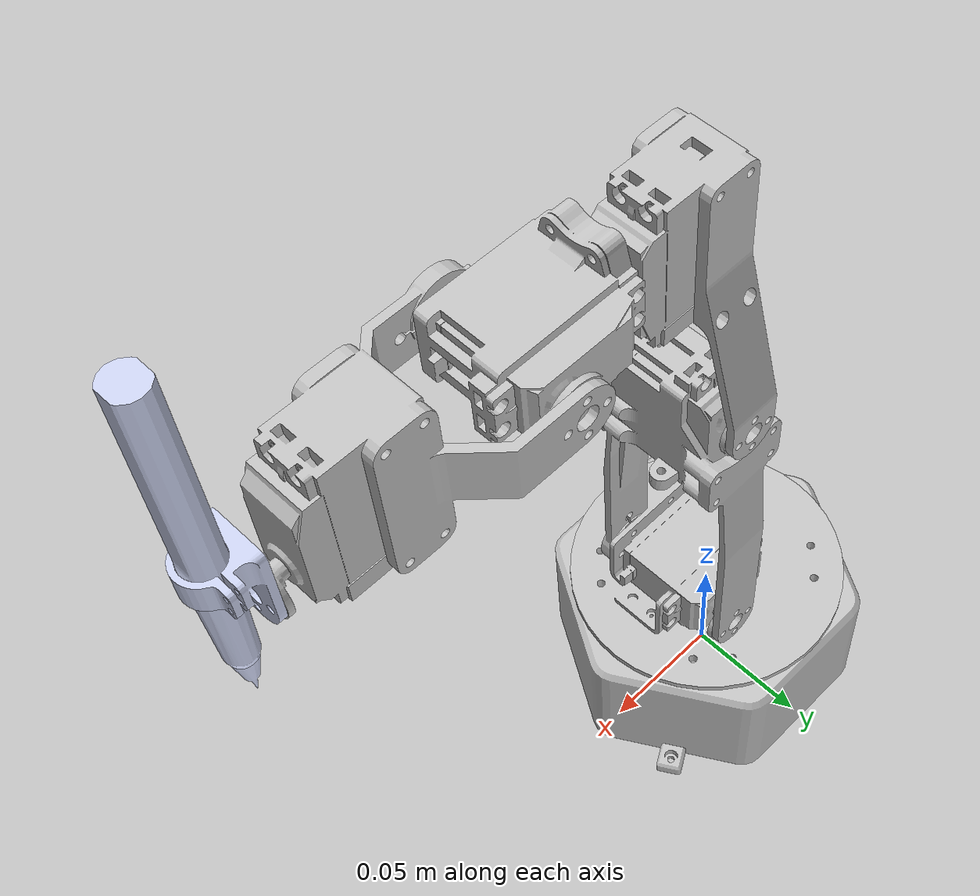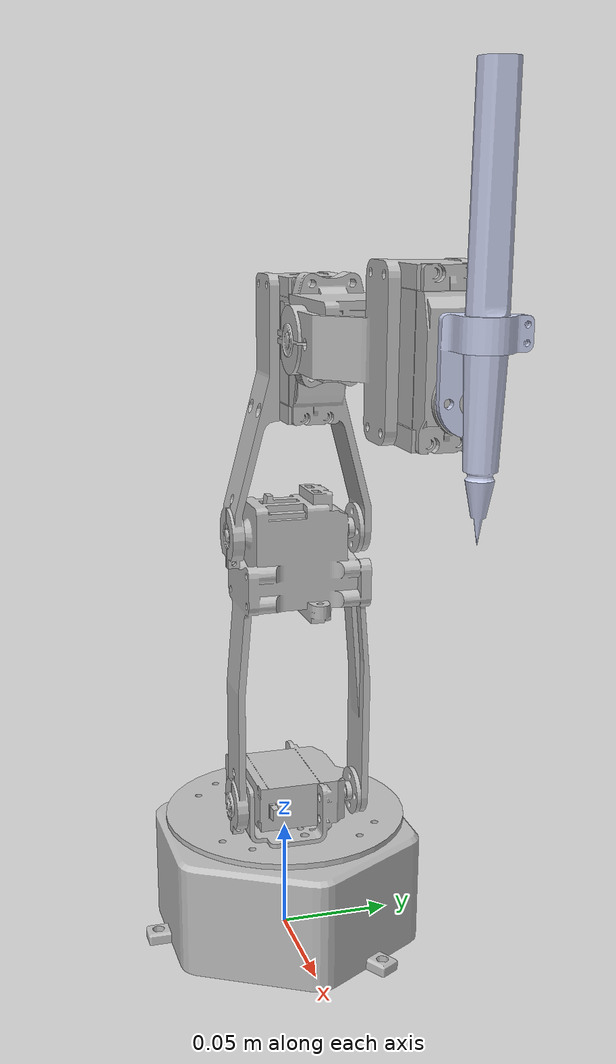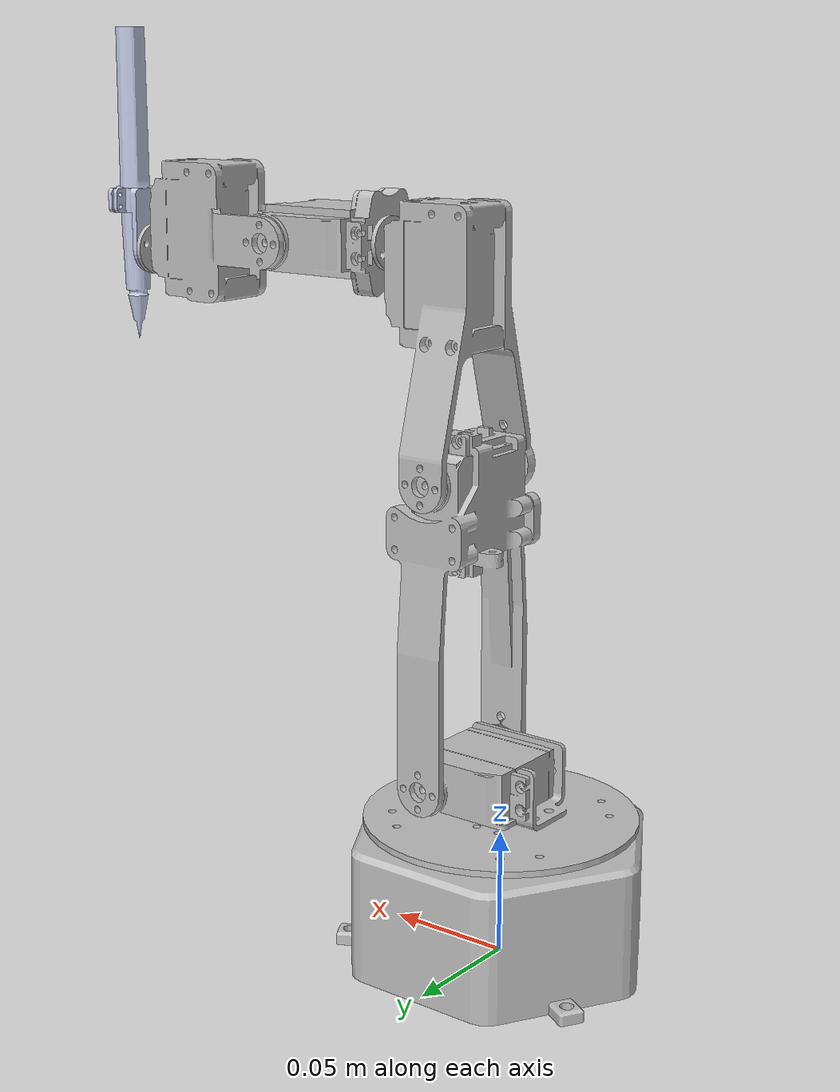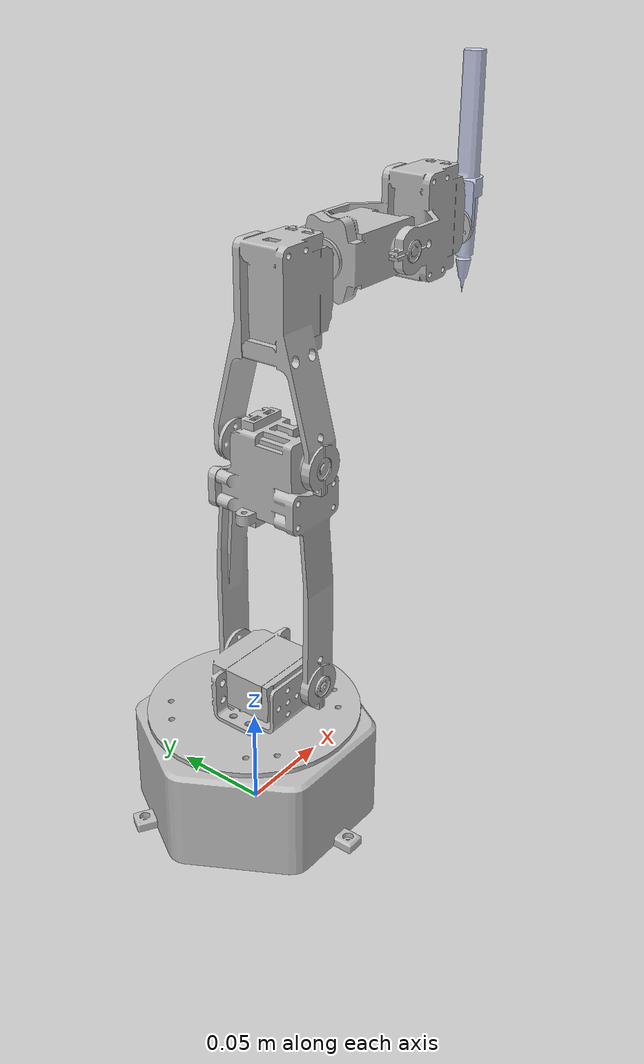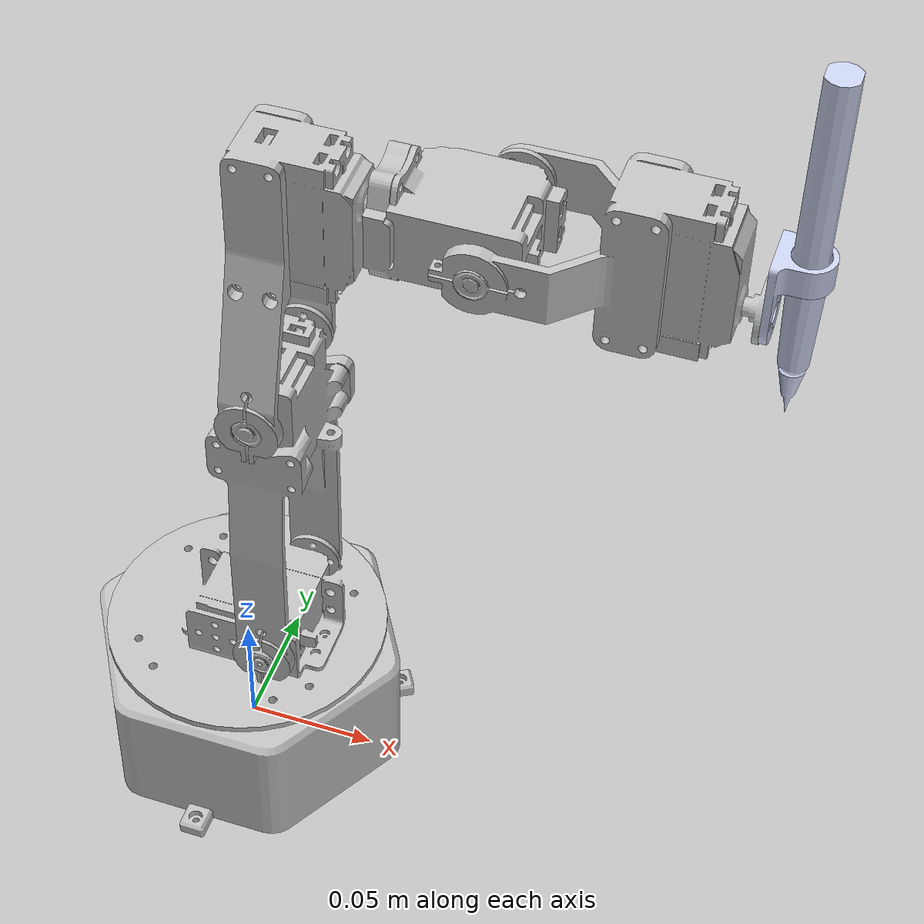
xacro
<?xml version="1.0"?>
<robot xmlns:xacro="http://www.ros.org/wiki/xacro" name="roboprinter_description">
    <xacro:arg name="initial_positions_file" default="initial_positions.yaml" />

    <!-- Import roboprinter_description urdf file -->
    <xacro:include filename="$(find roboprinter_description)/urdf/roboprinter_description.urdf" />

    <!-- Import control_xacro -->
    <xacro:include filename="roboprinter_description.ros2_control.xacro" />

    <xacro:roboprinter_description_ros2_control name="FakeSystem" initial_positions_file="$(arg initial_positions_file)"/>

</robot>

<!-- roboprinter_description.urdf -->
<robot
  name="roboprinter_description">
  <link
    name="base_link">
    <inertial>
      <origin
        xyz="-3.29639758360888E-18 6.40510956545558E-18 0.0252448902560107"
        rpy="0 0 0" />
      <mass
        value="0.528972339556969" />
      <inertia
        ixx="0.000565267350159599"
        ixy="7.20477701470394E-20"
        ixz="-1.35589134863881E-21"
        iyy="0.000565267350159599"
        iyz="1.48892540258629E-20"
        izz="0.000902847820384731" />
    </inertial>
    <visual>
      <origin
        xyz="0 0 0"
        rpy="0 0 0" />
      <geometry>
        <mesh
          filename="package://roboprinter_description/meshes/base_link.STL" />
      </geometry>
      <material
        name="">
        <color
          rgba="0.752941176470588 0.752941176470588 0.752941176470588 1" />
      </material>
    </visual>
    <collision>
      <origin
        xyz="0 0 0"
        rpy="0 0 0" />
      <geometry>
        <mesh
          filename="package://roboprinter_description/meshes/base_link.STL" />
      </geometry>
    </collision>
  </link>
  <link
    name="link1">
    <inertial>
      <origin
        xyz="0.00507209935034024 -0.000300441790189516 0.0116994245938115"
        rpy="0 0 0" />
      <mass
        value="0.0780956885827604" />
      <inertia
        ixx="2.74139429221986E-05"
        ixy="-4.7581426601598E-08"
        ixz="-4.52002661664857E-10"
        iyy="2.85023356212491E-05"
        iyz="1.79574293893268E-07"
        izz="5.24080462645915E-05" />
    </inertial>
    <visual>
      <origin
        xyz="0 0 0"
        rpy="0 0 0" />
      <geometry>
        <mesh
          filename="package://roboprinter_description/meshes/link1.STL" />
      </geometry>
      <material
        name="">
        <color
          rgba="0.752941176470588 0.752941176470588 0.752941176470588 1" />
      </material>
    </visual>
    <collision>
      <origin
        xyz="0 0 0"
        rpy="0 0 0" />
      <geometry>
        <mesh
          filename="package://roboprinter_description/meshes/link1.STL" />
      </geometry>
    </collision>
  </link>
  <joint
    name="joint1"
    type="continuous">
    <origin
      xyz="0 0 0.0535"
      rpy="0 0 0" />
    <parent
      link="base_link" />
    <child
      link="link1" />
    <axis
      xyz="0 0 1" />
    <limit
      lower="-1.5708"
      upper="1.5708"
      effort="0"
      velocity="0" />
  </joint>
  <link
    name="link2">
    <inertial>
      <origin
        xyz="1.66586907462962E-10 -0.097358513327758 -0.000842949373771198"
        rpy="0 0 0" />
      <mass
        value="0.0710552587256191" />
      <inertia
        ixx="3.51801005497061E-05"
        ixy="1.2886766012224E-13"
        ixz="-2.28168634625685E-13"
        iyy="1.05093963528104E-05"
        iyz="-2.70651104967169E-07"
        izz="3.24559133069899E-05" />
    </inertial>
    <visual>
      <origin
        xyz="0 0 0"
        rpy="0 0 0" />
      <geometry>
        <mesh
          filename="package://roboprinter_description/meshes/link2.STL" />
      </geometry>
      <material
        name="">
        <color
          rgba="0.752941176470588 0.752941176470588 0.752941176470588 1" />
      </material>
    </visual>
    <collision>
      <origin
        xyz="0 0 0"
        rpy="0 0 0" />
      <geometry>
        <mesh
          filename="package://roboprinter_description/meshes/link2.STL" />
      </geometry>
    </collision>
  </link>
  <joint
    name="joint2"
    type="continuous">
    <origin
      xyz="0.018 0.00075 0.0185"
      rpy="-1.5708 0 0" />
    <parent
      link="link1" />
    <child
      link="link2" />
    <axis
      xyz="0 0 1" />
    <limit
      lower="-1.5708"
      upper="1.5708"
      effort="0"
      velocity="0" />
  </joint>
  <link
    name="link3">
    <inertial>
      <origin
        xyz="0.00924260865916297 -0.0685971128471527 -0.000891457472441148"
        rpy="0 0 0" />
      <mass
        value="0.063710838791278" />
      <inertia
        ixx="2.32949415106812E-05"
        ixy="4.58056298766306E-08"
        ixz="-1.47447853758939E-13"
        iyy="7.69364844206756E-06"
        iyz="3.36461385700796E-07"
        izz="2.66143887657194E-05" />
    </inertial>
    <visual>
      <origin
        xyz="0 0 0"
        rpy="0 0 0" />
      <geometry>
        <mesh
          filename="package://roboprinter_description/meshes/link3.STL" />
      </geometry>
      <material
        name="">
        <color
          rgba="0.752941176470588 0.752941176470588 0.752941176470588 1" />
      </material>
    </visual>
    <collision>
      <origin
        xyz="0 0 0"
        rpy="0 0 0" />
      <geometry>
        <mesh
          filename="package://roboprinter_description/meshes/link3.STL" />
      </geometry>
    </collision>
  </link>
  <joint
    name="joint3"
    type="continuous">
    <origin
      xyz="0 -0.12025 0.000125"
      rpy="0 0 0" />
    <parent
      link="link2" />
    <child
      link="link3" />
    <axis
      xyz="0 0 1" />
    <limit
      lower="-1.5708"
      upper="1.5708"
      effort="0"
      velocity="0" />
  </joint>
  <link
    name="link4">
    <inertial>
      <origin
        xyz="1.11022302462516E-16 -0.00240405152854635 0.0256295741808176"
        rpy="0 0 0" />
      <mass
        value="0.0574652082257363" />
      <inertia
        ixx="1.35787495117706E-05"
        ixy="2.05795510120988E-21"
        ixz="-1.44833338790548E-21"
        iyy="1.07767966077502E-05"
        iyz="1.55705095507992E-07"
        izz="9.2117235835035E-06" />
    </inertial>
    <visual>
      <origin
        xyz="0 0 0"
        rpy="0 0 0" />
      <geometry>
        <mesh
          filename="package://roboprinter_description/meshes/link4.STL" />
      </geometry>
      <material
        name="">
        <color
          rgba="0.752941176470588 0.752941176470588 0.752941176470588 1" />
      </material>
    </visual>
    <collision>
      <origin
        xyz="0 0 0"
        rpy="0 0 0" />
      <geometry>
        <mesh
          filename="package://roboprinter_description/meshes/link4.STL" />
      </geometry>
    </collision>
  </link>
  <joint
    name="joint4"
    type="continuous">
    <origin
      xyz="0.0375 -0.085 -0.000625"
      rpy="-1.5708 0 -1.5708" />
    <parent
      link="link3" />
    <child
      link="link4" />
    <axis
      xyz="0 0 1" />
    <limit
      lower="-1.5708"
      upper="1.5708"
      effort="0"
      velocity="0" />
  </joint>
  <link
    name="link5">
    <inertial>
      <origin
        xyz="0.000135673462176855 -0.0516824795785821 -0.000269379470015593"
        rpy="0 0 0" />
      <mass
        value="0.0613661556558953" />
      <inertia
        ixx="1.15764077279977E-05"
        ixy="4.58049748437246E-08"
        ixz="8.94951420120586E-21"
        iyy="9.79155800814954E-06"
        iyz="2.0759913512661E-07"
        izz="1.70267491333011E-05" />
    </inertial>
    <visual>
      <origin
        xyz="0 0 0"
        rpy="0 0 0" />
      <geometry>
        <mesh
          filename="package://roboprinter_description/meshes/link5.STL" />
      </geometry>
      <material
        name="">
        <color
          rgba="0.752941176470588 0.752941176470588 0.752941176470588 1" />
      </material>
    </visual>
    <collision>
      <origin
        xyz="0 0 0"
        rpy="0 0 0" />
      <geometry>
        <mesh
          filename="package://roboprinter_description/meshes/link5.STL" />
      </geometry>
    </collision>
  </link>
  <joint
    name="joint5"
    type="continuous">
    <origin
      xyz="0 -0.004 0.03725"
      rpy="-1.5708 0 -3.1416" />
    <parent
      link="link4" />
    <child
      link="link5" />
    <axis
      xyz="0 0 1" />
    <limit
      lower="-1.5708"
      upper="1.5708"
      effort="0"
      velocity="0" />
  </joint>
  <link
    name="link6">
    <inertial>
      <origin
        xyz="0.0143595422392718 -0.000612672832744842 0.0047999736628663"
        rpy="0 0 0" />
      <mass
        value="0.00271172671570455" />
      <inertia
        ixx="1.71332219642541E-07"
        ixy="9.37180381460327E-09"
        ixz="-5.42937694243123E-08"
        iyy="2.89686808729506E-07"
        iyz="9.57903170943266E-09"
        izz="3.18465730413809E-07" />
    </inertial>
    <visual>
      <origin
        xyz="0 0 0"
        rpy="0 0 0" />
      <geometry>
        <mesh
          filename="package://roboprinter_description/meshes/link6.STL" />
      </geometry>
      <material
        name="">
        <color
          rgba="0.792156862745098 0.819607843137255 0.933333333333333 1" />
      </material>
    </visual>
    <collision>
      <origin
        xyz="0 0 0"
        rpy="0 0 0" />
      <geometry>
        <mesh
          filename="package://roboprinter_description/meshes/link6.STL" />
      </geometry>
    </collision>
  </link>
  <joint
    name="joint6"
    type="continuous">
    <origin
      xyz="0.01 -0.084649 0"
      rpy="-1.5708 0 3.1416" />
    <parent
      link="link5" />
    <child
      link="link6" />
    <axis
      xyz="0 0 1" />
    <limit
      lower="-1.5708"
      upper="1.5708"
      effort="0"
      velocity="0" />
  </joint>
  <link
    name="end_effector">
    <inertial>
      <origin
        xyz="4.70253176676483E-12 -9.25969745324551E-10 -0.0742532271411501"
        rpy="0 0 0" />
      <mass
        value="0.0118315685530414" />
      <inertia
        ixx="1.22920468793244E-05"
        ixy="5.63748568852987E-14"
        ixz="-1.11700708800501E-15"
        iyy="1.23044609312459E-05"
        iyz="1.21000481097898E-13"
        izz="1.94618918342423E-07" />
    </inertial>
    <visual>
      <origin
        xyz="0 0 0"
        rpy="0 0 0" />
      <geometry>
        <mesh
          filename="package://roboprinter_description/meshes/end_effector.STL" />
      </geometry>
      <material
        name="">
        <color
          rgba="0.792156862745098 0.819607843137255 0.933333333333333 1" />
      </material>
    </visual>
    <collision>
      <origin
        xyz="0 0 0"
        rpy="0 0 0" />
      <geometry>
        <mesh
          filename="package://roboprinter_description/meshes/end_effector.STL" />
      </geometry>
    </collision>
  </link>
  <joint
    name="effector_joint"
    type="fixed">
    <origin
      xyz="-0.04 0 0.0105"
      rpy="-1.5708 0 1.5708" />
    <parent
      link="link6" />
    <child
      link="end_effector" />
    <axis
      xyz="0 0 0" />
  </joint>
</robot>
